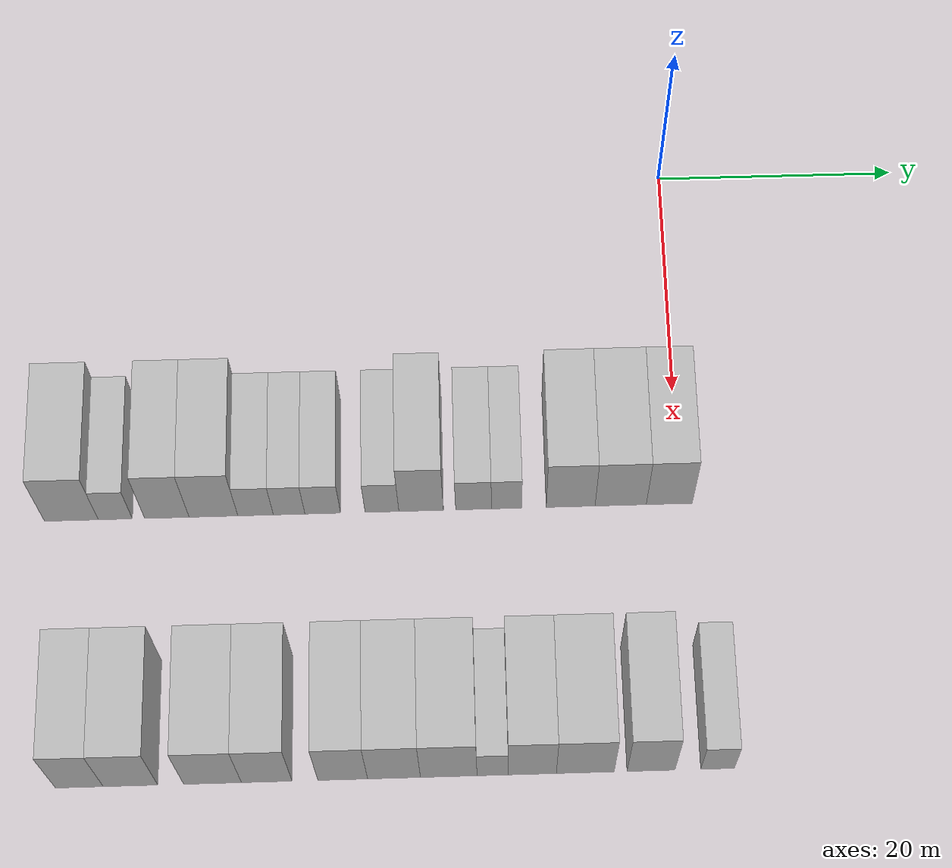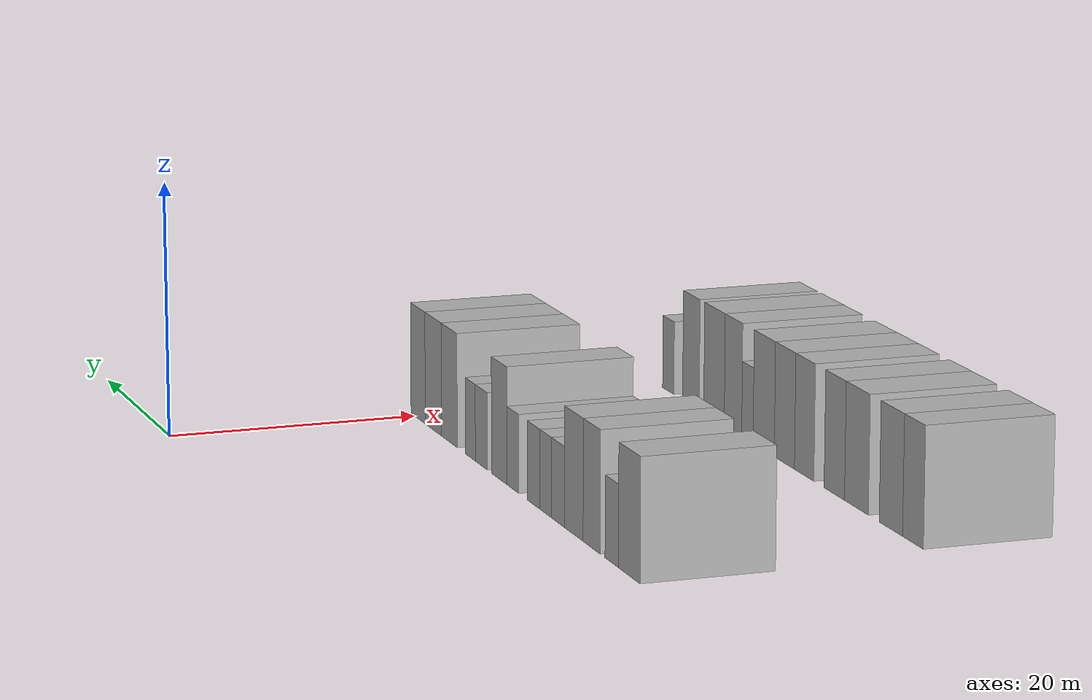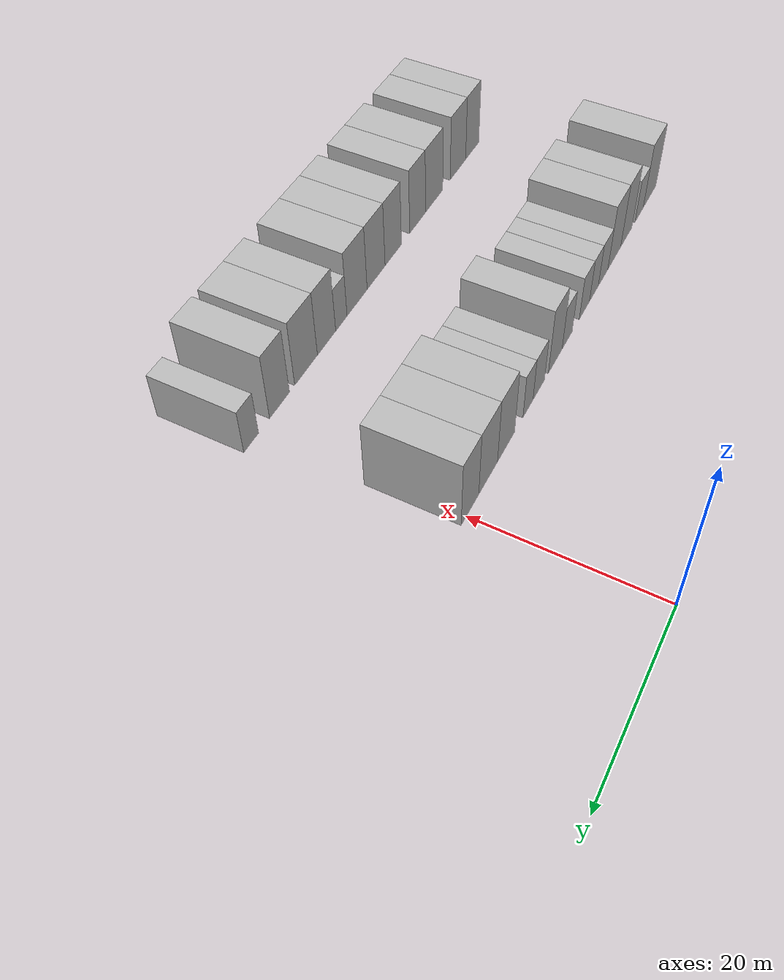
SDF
<sdf version="1.6">
 <world name="default">
  <model name="building_37">
   <static>1</static>
   <pose>25.0000 -49.4260 0 0.000000 0.000000 0.000000</pose>
   <link name="link">
    <pose>0 0 4.50 0 0 0</pose>
    <collision name="collision"><geometry><box><size>10.0000 4.3583 9.0000</size></box></geometry></collision>
    <visual name="visual">
     <cast_shadows>0</cast_shadows>
     <geometry><box><size>10.0000 4.3583 9.0000</size></box></geometry>
     <material>
      <script>
       <uri>model://HANNAS_wall/materials/scripts</uri>
       <uri>model://HANNAS_wall/materials/textures</uri>
       <name>vrc/HANNAS_wall</name>
      </script>
     </material>
    </visual>
   </link>
  </model>
  <model name="building_38">
   <static>1</static>
   <pose>25.0000 -45.8665 0 0.000000 0.000000 0.000000</pose>
   <link name="link">
    <pose>0 0 3.00 0 0 0</pose>
    <collision name="collision"><geometry><box><size>10.0000 2.7607 6.0000</size></box></geometry></collision>
    <visual name="visual">
     <cast_shadows>0</cast_shadows>
     <geometry><box><size>10.0000 2.7607 6.0000</size></box></geometry>
     <material>
      <script>
       <uri>model://HANNAS_wall/materials/scripts</uri>
       <uri>model://HANNAS_wall/materials/textures</uri>
       <name>vrc/HANNAS_wall</name>
      </script>
     </material>
    </visual>
   </link>
  </model>
  <model name="building_39">
   <static>1</static>
   <pose>25.0000 -41.6844 0 0.000000 0.000000 0.000000</pose>
   <link name="link">
    <pose>0 0 4.50 0 0 0</pose>
    <collision name="collision"><geometry><box><size>10.0000 3.6036 9.0000</size></box></geometry></collision>
    <visual name="visual">
     <cast_shadows>0</cast_shadows>
     <geometry><box><size>10.0000 3.6036 9.0000</size></box></geometry>
     <material>
      <script>
       <uri>model://HANNAS_wall/materials/scripts</uri>
       <uri>model://HANNAS_wall/materials/textures</uri>
       <name>vrc/HANNAS_wall</name>
      </script>
     </material>
    </visual>
   </link>
  </model>
  <model name="building_40">
   <static>1</static>
   <pose>25.0000 -37.9024 0 0.000000 0.000000 0.000000</pose>
   <link name="link">
    <pose>0 0 4.50 0 0 0</pose>
    <collision name="collision"><geometry><box><size>10.0000 3.9604 9.0000</size></box></geometry></collision>
    <visual name="visual">
     <cast_shadows>0</cast_shadows>
     <geometry><box><size>10.0000 3.9604 9.0000</size></box></geometry>
     <material>
      <script>
       <uri>model://HANNAS_wall/materials/scripts</uri>
       <uri>model://HANNAS_wall/materials/textures</uri>
       <name>vrc/HANNAS_wall</name>
      </script>
     </material>
    </visual>
   </link>
  </model>
  <model name="building_41">
   <static>1</static>
   <pose>25.0000 -34.4834 0 0.000000 0.000000 0.000000</pose>
   <link name="link">
    <pose>0 0 3.00 0 0 0</pose>
    <collision name="collision"><geometry><box><size>10.0000 2.8776 6.0000</size></box></geometry></collision>
    <visual name="visual">
     <cast_shadows>0</cast_shadows>
     <geometry><box><size>10.0000 2.8776 6.0000</size></box></geometry>
     <material>
      <script>
       <uri>model://HANNAS_wall/materials/scripts</uri>
       <uri>model://HANNAS_wall/materials/textures</uri>
       <name>vrc/HANNAS_wall</name>
      </script>
     </material>
    </visual>
   </link>
  </model>
  <model name="building_42">
   <static>1</static>
   <pose>25.0000 -31.7618 0 0.000000 0.000000 0.000000</pose>
   <link name="link">
    <pose>0 0 3.00 0 0 0</pose>
    <collision name="collision"><geometry><box><size>10.0000 2.5654 6.0000</size></box></geometry></collision>
    <visual name="visual">
     <cast_shadows>0</cast_shadows>
     <geometry><box><size>10.0000 2.5654 6.0000</size></box></geometry>
     <material>
      <script>
       <uri>model://HANNAS_wall/materials/scripts</uri>
       <uri>model://HANNAS_wall/materials/textures</uri>
       <name>vrc/HANNAS_wall</name>
      </script>
     </material>
    </visual>
   </link>
  </model>
  <model name="building_43">
   <static>1</static>
   <pose>25.0000 -29.0326 0 0.000000 0.000000 0.000000</pose>
   <link name="link">
    <pose>0 0 3.00 0 0 0</pose>
    <collision name="collision"><geometry><box><size>10.0000 2.8930 6.0000</size></box></geometry></collision>
    <visual name="visual">
     <cast_shadows>0</cast_shadows>
     <geometry><box><size>10.0000 2.8930 6.0000</size></box></geometry>
     <material>
      <script>
       <uri>model://HANNAS_wall/materials/scripts</uri>
       <uri>model://HANNAS_wall/materials/textures</uri>
       <name>vrc/HANNAS_wall</name>
      </script>
     </material>
    </visual>
   </link>
  </model>
  <model name="building_44">
   <static>1</static>
   <pose>25.0000 -24.2162 0 0.000000 0.000000 0.000000</pose>
   <link name="link">
    <pose>0 0 3.00 0 0 0</pose>
    <collision name="collision"><geometry><box><size>10.0000 2.7399 6.0000</size></box></geometry></collision>
    <visual name="visual">
     <cast_shadows>0</cast_shadows>
     <geometry><box><size>10.0000 2.7399 6.0000</size></box></geometry>
     <material>
      <script>
       <uri>model://HANNAS_wall/materials/scripts</uri>
       <uri>model://HANNAS_wall/materials/textures</uri>
       <name>vrc/HANNAS_wall</name>
      </script>
     </material>
    </visual>
   </link>
  </model>
  <model name="building_45">
   <static>1</static>
   <pose>25.0000 -21.0369 0 0.000000 0.000000 0.000000</pose>
   <link name="link">
    <pose>0 0 4.50 0 0 0</pose>
    <collision name="collision"><geometry><box><size>10.0000 3.6186 9.0000</size></box></geometry></collision>
    <visual name="visual">
     <cast_shadows>0</cast_shadows>
     <geometry><box><size>10.0000 3.6186 9.0000</size></box></geometry>
     <material>
      <script>
       <uri>model://HANNAS_wall/materials/scripts</uri>
       <uri>model://HANNAS_wall/materials/textures</uri>
       <name>vrc/HANNAS_wall</name>
      </script>
     </material>
    </visual>
   </link>
  </model>
  <model name="building_46">
   <static>1</static>
   <pose>25.0000 -16.7770 0 0.000000 0.000000 0.000000</pose>
   <link name="link">
    <pose>0 0 3.00 0 0 0</pose>
    <collision name="collision"><geometry><box><size>10.0000 2.9012 6.0000</size></box></geometry></collision>
    <visual name="visual">
     <cast_shadows>0</cast_shadows>
     <geometry><box><size>10.0000 2.9012 6.0000</size></box></geometry>
     <material>
      <script>
       <uri>model://HANNAS_wall/materials/scripts</uri>
       <uri>model://HANNAS_wall/materials/textures</uri>
       <name>vrc/HANNAS_wall</name>
      </script>
     </material>
    </visual>
   </link>
  </model>
  <model name="building_47">
   <static>1</static>
   <pose>25.0000 -14.0936 0 0.000000 0.000000 0.000000</pose>
   <link name="link">
    <pose>0 0 3.00 0 0 0</pose>
    <collision name="collision"><geometry><box><size>10.0000 2.4657 6.0000</size></box></geometry></collision>
    <visual name="visual">
     <cast_shadows>0</cast_shadows>
     <geometry><box><size>10.0000 2.4657 6.0000</size></box></geometry>
     <material>
      <script>
       <uri>model://HANNAS_wall/materials/scripts</uri>
       <uri>model://HANNAS_wall/materials/textures</uri>
       <name>vrc/HANNAS_wall</name>
      </script>
     </material>
    </visual>
   </link>
  </model>
  <model name="building_48">
   <static>1</static>
   <pose>25.0000 -8.8720 0 0.000000 0.000000 0.000000</pose>
   <link name="link">
    <pose>0 0 4.50 0 0 0</pose>
    <collision name="collision"><geometry><box><size>10.0000 3.9774 9.0000</size></box></geometry></collision>
    <visual name="visual">
     <cast_shadows>0</cast_shadows>
     <geometry><box><size>10.0000 3.9774 9.0000</size></box></geometry>
     <material>
      <script>
       <uri>model://HANNAS_wall/materials/scripts</uri>
       <uri>model://HANNAS_wall/materials/textures</uri>
       <name>vrc/HANNAS_wall</name>
      </script>
     </material>
    </visual>
   </link>
  </model>
  <model name="building_49">
   <static>1</static>
   <pose>25.0000 -4.7981 0 0.000000 0.000000 0.000000</pose>
   <link name="link">
    <pose>0 0 4.50 0 0 0</pose>
    <collision name="collision"><geometry><box><size>10.0000 4.1706 9.0000</size></box></geometry></collision>
    <visual name="visual">
     <cast_shadows>0</cast_shadows>
     <geometry><box><size>10.0000 4.1706 9.0000</size></box></geometry>
     <material>
      <script>
       <uri>model://HANNAS_wall/materials/scripts</uri>
       <uri>model://HANNAS_wall/materials/textures</uri>
       <name>vrc/HANNAS_wall</name>
      </script>
     </material>
    </visual>
   </link>
  </model>
  <model name="building_50">
   <static>1</static>
   <pose>25.0000 -0.8397 0 0.000000 0.000000 0.000000</pose>
   <link name="link">
    <pose>0 0 4.50 0 0 0</pose>
    <collision name="collision"><geometry><box><size>10.0000 3.7461 9.0000</size></box></geometry></collision>
    <visual name="visual">
     <cast_shadows>0</cast_shadows>
     <geometry><box><size>10.0000 3.7461 9.0000</size></box></geometry>
     <material>
      <script>
       <uri>model://HANNAS_wall/materials/scripts</uri>
       <uri>model://HANNAS_wall/materials/textures</uri>
       <name>vrc/HANNAS_wall</name>
      </script>
     </material>
    </visual>
   </link>
  </model>
  <model name="building_146">
   <static>1</static>
   <pose>47.0000 -47.8244 0 0.000000 0.000000 0.000000</pose>
   <link name="link">
    <pose>0 0 4.50 0 0 0</pose>
    <collision name="collision"><geometry><box><size>10.0000 3.6933 9.0000</size></box></geometry></collision>
    <visual name="visual">
     <cast_shadows>0</cast_shadows>
     <geometry><box><size>10.0000 3.6933 9.0000</size></box></geometry>
     <material>
      <script>
       <uri>model://HANNAS_wall/materials/scripts</uri>
       <uri>model://HANNAS_wall/materials/textures</uri>
       <name>vrc/HANNAS_wall</name>
      </script>
     </material>
    </visual>
   </link>
  </model>
  <model name="building_147">
   <static>1</static>
   <pose>47.0000 -43.8699 0 0.000000 0.000000 0.000000</pose>
   <link name="link">
    <pose>0 0 4.50 0 0 0</pose>
    <collision name="collision"><geometry><box><size>10.0000 4.2156 9.0000</size></box></geometry></collision>
    <visual name="visual">
     <cast_shadows>0</cast_shadows>
     <geometry><box><size>10.0000 4.2156 9.0000</size></box></geometry>
     <material>
      <script>
       <uri>model://HANNAS_wall/materials/scripts</uri>
       <uri>model://HANNAS_wall/materials/textures</uri>
       <name>vrc/HANNAS_wall</name>
      </script>
     </material>
    </visual>
   </link>
  </model>
  <model name="building_148">
   <static>1</static>
   <pose>47.0000 -37.5255 0 0.000000 0.000000 0.000000</pose>
   <link name="link">
    <pose>0 0 4.50 0 0 0</pose>
    <collision name="collision"><geometry><box><size>10.0000 4.4732 9.0000</size></box></geometry></collision>
    <visual name="visual">
     <cast_shadows>0</cast_shadows>
     <geometry><box><size>10.0000 4.4732 9.0000</size></box></geometry>
     <material>
      <script>
       <uri>model://HANNAS_wall/materials/scripts</uri>
       <uri>model://HANNAS_wall/materials/textures</uri>
       <name>vrc/HANNAS_wall</name>
      </script>
     </material>
    </visual>
   </link>
  </model>
  <model name="building_149">
   <static>1</static>
   <pose>47.0000 -33.3310 0 0.000000 0.000000 0.000000</pose>
   <link name="link">
    <pose>0 0 4.50 0 0 0</pose>
    <collision name="collision"><geometry><box><size>10.0000 3.9159 9.0000</size></box></geometry></collision>
    <visual name="visual">
     <cast_shadows>0</cast_shadows>
     <geometry><box><size>10.0000 3.9159 9.0000</size></box></geometry>
     <material>
      <script>
       <uri>model://HANNAS_wall/materials/scripts</uri>
       <uri>model://HANNAS_wall/materials/textures</uri>
       <name>vrc/HANNAS_wall</name>
      </script>
     </material>
    </visual>
   </link>
  </model>
  <model name="building_150">
   <static>1</static>
   <pose>47.0000 -27.4478 0 0.000000 0.000000 0.000000</pose>
   <link name="link">
    <pose>0 0 4.50 0 0 0</pose>
    <collision name="collision"><geometry><box><size>10.0000 3.8503 9.0000</size></box></geometry></collision>
    <visual name="visual">
     <cast_shadows>0</cast_shadows>
     <geometry><box><size>10.0000 3.8503 9.0000</size></box></geometry>
     <material>
      <script>
       <uri>model://HANNAS_wall/materials/scripts</uri>
       <uri>model://HANNAS_wall/materials/textures</uri>
       <name>vrc/HANNAS_wall</name>
      </script>
     </material>
    </visual>
   </link>
  </model>
  <model name="building_151">
   <static>1</static>
   <pose>47.0000 -23.4774 0 0.000000 0.000000 0.000000</pose>
   <link name="link">
    <pose>0 0 4.50 0 0 0</pose>
    <collision name="collision"><geometry><box><size>10.0000 4.0907 9.0000</size></box></geometry></collision>
    <visual name="visual">
     <cast_shadows>0</cast_shadows>
     <geometry><box><size>10.0000 4.0907 9.0000</size></box></geometry>
     <material>
      <script>
       <uri>model://HANNAS_wall/materials/scripts</uri>
       <uri>model://HANNAS_wall/materials/textures</uri>
       <name>vrc/HANNAS_wall</name>
      </script>
     </material>
    </visual>
   </link>
  </model>
  <model name="building_152">
   <static>1</static>
   <pose>47.0000 -19.2384 0 0.000000 0.000000 0.000000</pose>
   <link name="link">
    <pose>0 0 4.50 0 0 0</pose>
    <collision name="collision"><geometry><box><size>10.0000 4.3873 9.0000</size></box></geometry></collision>
    <visual name="visual">
     <cast_shadows>0</cast_shadows>
     <geometry><box><size>10.0000 4.3873 9.0000</size></box></geometry>
     <material>
      <script>
       <uri>model://HANNAS_wall/materials/scripts</uri>
       <uri>model://HANNAS_wall/materials/textures</uri>
       <name>vrc/HANNAS_wall</name>
      </script>
     </material>
    </visual>
   </link>
  </model>
  <model name="building_153">
   <static>1</static>
   <pose>47.0000 -15.8443 0 0.000000 0.000000 0.000000</pose>
   <link name="link">
    <pose>0 0 3.00 0 0 0</pose>
    <collision name="collision"><geometry><box><size>10.0000 2.4008 6.0000</size></box></geometry></collision>
    <visual name="visual">
     <cast_shadows>0</cast_shadows>
     <geometry><box><size>10.0000 2.4008 6.0000</size></box></geometry>
     <material>
      <script>
       <uri>model://HANNAS_wall/materials/scripts</uri>
       <uri>model://HANNAS_wall/materials/textures</uri>
       <name>vrc/HANNAS_wall</name>
      </script>
     </material>
    </visual>
   </link>
  </model>
  <model name="building_154">
   <static>1</static>
   <pose>47.0000 -12.7701 0 0.000000 0.000000 0.000000</pose>
   <link name="link">
    <pose>0 0 4.50 0 0 0</pose>
    <collision name="collision"><geometry><box><size>10.0000 3.7477 9.0000</size></box></geometry></collision>
    <visual name="visual">
     <cast_shadows>0</cast_shadows>
     <geometry><box><size>10.0000 3.7477 9.0000</size></box></geometry>
     <material>
      <script>
       <uri>model://HANNAS_wall/materials/scripts</uri>
       <uri>model://HANNAS_wall/materials/textures</uri>
       <name>vrc/HANNAS_wall</name>
      </script>
     </material>
    </visual>
   </link>
  </model>
  <model name="building_155">
   <static>1</static>
   <pose>47.0000 -8.6504 0 0.000000 0.000000 0.000000</pose>
   <link name="link">
    <pose>0 0 4.50 0 0 0</pose>
    <collision name="collision"><geometry><box><size>10.0000 4.4918 9.0000</size></box></geometry></collision>
    <visual name="visual">
     <cast_shadows>0</cast_shadows>
     <geometry><box><size>10.0000 4.4918 9.0000</size></box></geometry>
     <material>
      <script>
       <uri>model://HANNAS_wall/materials/scripts</uri>
       <uri>model://HANNAS_wall/materials/textures</uri>
       <name>vrc/HANNAS_wall</name>
      </script>
     </material>
    </visual>
   </link>
  </model>
  <model name="building_156">
   <static>1</static>
   <pose>47.0000 -3.5394 0 0.000000 0.000000 0.000000</pose>
   <link name="link">
    <pose>0 0 4.50 0 0 0</pose>
    <collision name="collision"><geometry><box><size>10.0000 3.7301 9.0000</size></box></geometry></collision>
    <visual name="visual">
     <cast_shadows>0</cast_shadows>
     <geometry><box><size>10.0000 3.7301 9.0000</size></box></geometry>
     <material>
      <script>
       <uri>model://HANNAS_wall/materials/scripts</uri>
       <uri>model://HANNAS_wall/materials/textures</uri>
       <name>vrc/HANNAS_wall</name>
      </script>
     </material>
    </visual>
   </link>
  </model>
  <model name="building_157">
   <static>1</static>
   <pose>47.0000 1.6336 0 0.000000 0.000000 0.000000</pose>
   <link name="link">
    <pose>0 0 3.00 0 0 0</pose>
    <collision name="collision"><geometry><box><size>10.0000 2.6161 6.0000</size></box></geometry></collision>
    <visual name="visual">
     <cast_shadows>0</cast_shadows>
     <geometry><box><size>10.0000 2.6161 6.0000</size></box></geometry>
     <material>
      <script>
       <uri>model://HANNAS_wall/materials/scripts</uri>
       <uri>model://HANNAS_wall/materials/textures</uri>
       <name>vrc/HANNAS_wall</name>
      </script>
     </material>
    </visual>
   </link>
  </model>
 </world>
</sdf>
